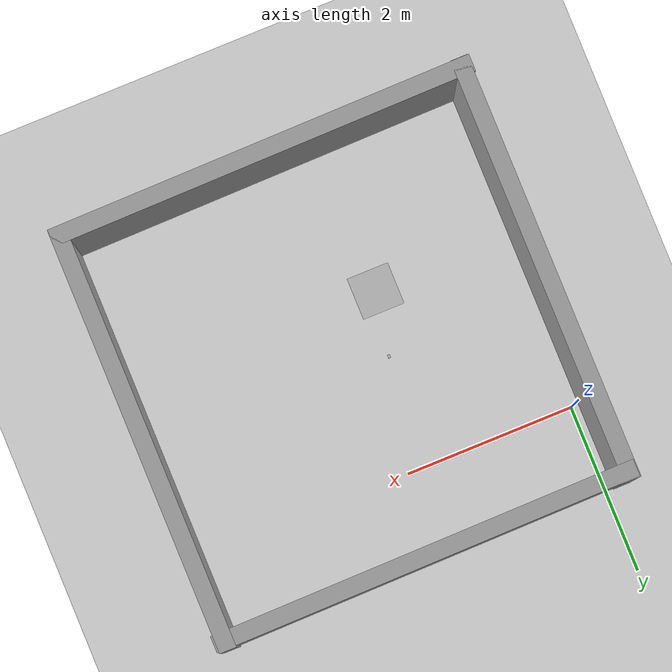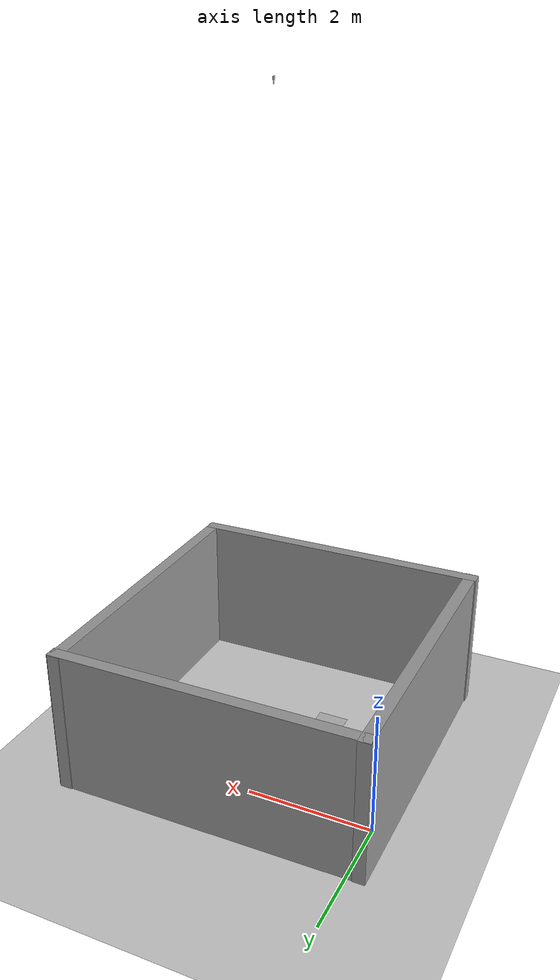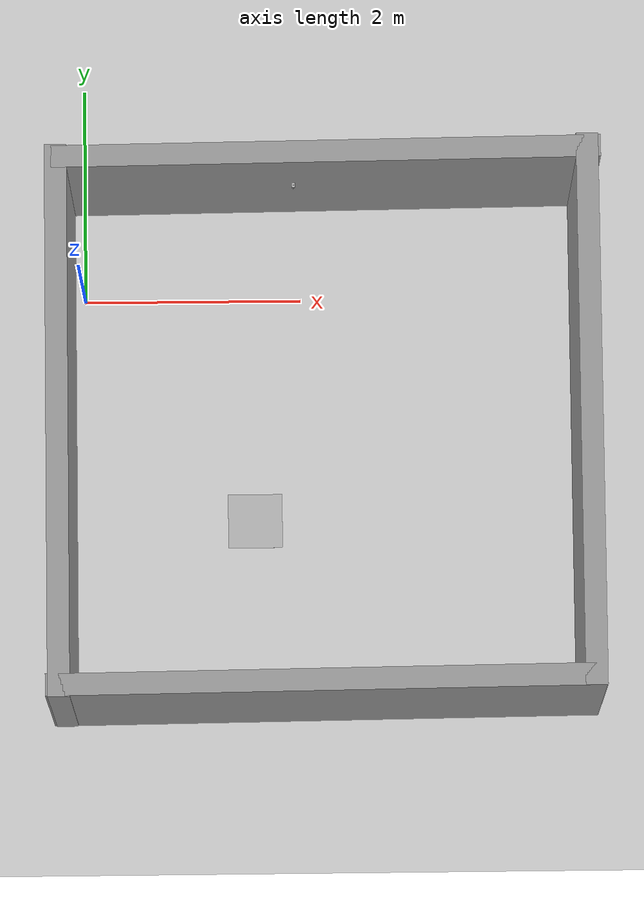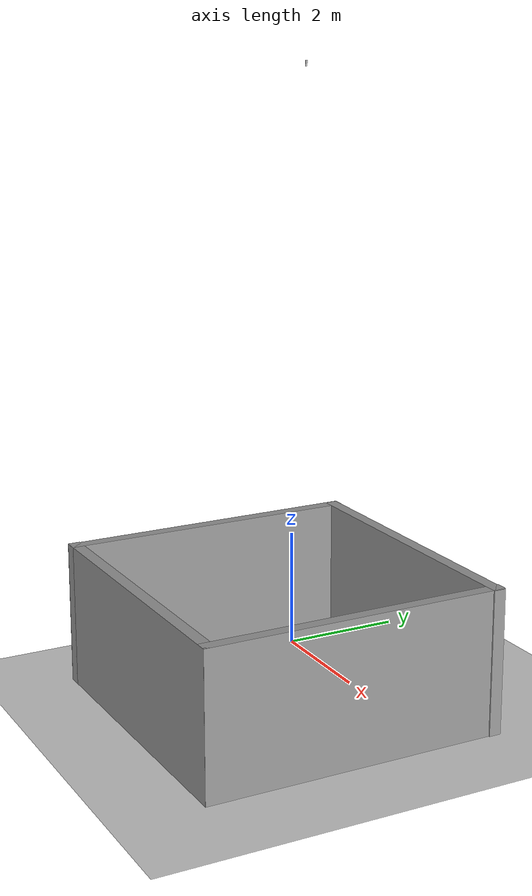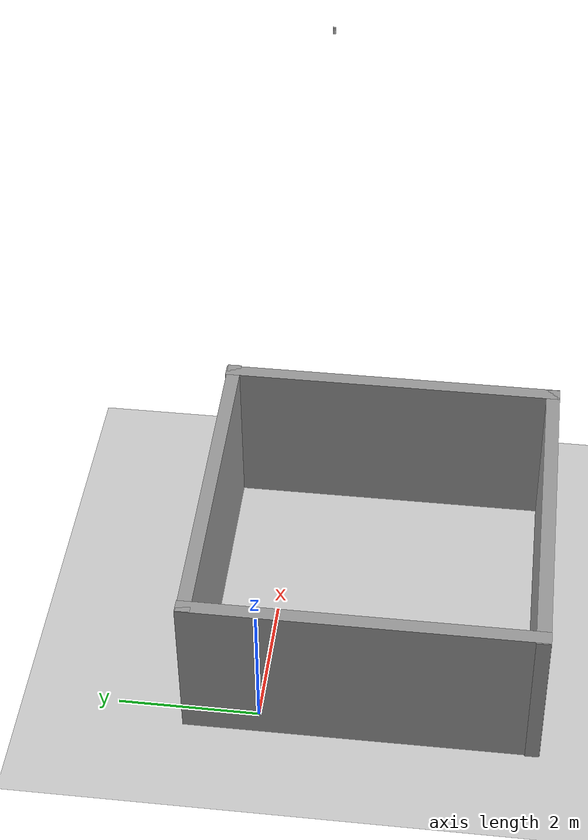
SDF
<?xml version="1.0"?>
<sdf version='1.6'>
  <world name='default'>

      <light type="spot" name="point_light">
      <pose>1.482 -1.417 22 0 0 0</pose>
      <diffuse>255 255 255 255</diffuse>
      <specular>23 23 23 255</specular>
      <attenuation>
        <range>200</range>
        <linear>0</linear>
        <constant>0.25</constant>
        <quadratic>0.</quadratic>
      </attenuation>
      <cast_shadows>false</cast_shadows>
    </light>

    <include>
      <uri>model://ground_plane</uri>
    </include>
    <include>
      <uri>model://sun</uri>
      <pose>0 0 5000 0 0 0</pose>
      <name>sun</name>
    </include>
    <physics type="ode">
      <real_time_update_rate>1000.0</real_time_update_rate>
      <max_step_size>0.001</max_step_size>
      <real_time_factor>1</real_time_factor>
      <ode>
        <solver>
          <type>quick</type>
          <iters>150</iters>
          <precon_iters>0</precon_iters>
          <sor>1.400000</sor>
          <use_dynamic_moi_rescaling>1</use_dynamic_moi_rescaling>
        </solver>
        <constraints>
          <cfm>0.00001</cfm>
          <erp>0.2</erp>
          <contact_max_correcting_vel>2000.000000</contact_max_correcting_vel>
          <contact_surface_layer>0.01000</contact_surface_layer>
        </constraints>
      </ode>
    </physics>
    <include>
      <uri>model://april_tags_camera</uri>
      <pose>1.968 -0.84 10.0 0 1.57079 0</pose>
      <name>april_tags_camera</name>
    </include>
    <include>
      <uri>model://big_room</uri>
      <pose>-2.093255 -5.88 -0.3 0 0 0</pose>
      <name>big_room</name>
    </include>
    <include>
      <uri>model://apriltag1</uri>
      <pose>1.559 -2.069 0.0298 3.1415 -1.562 1.571</pose>
      <name>AprilTag1</name>
    </include>
  </world>
</sdf>

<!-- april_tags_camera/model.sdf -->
<sdf version='1.6'>
  <model name='april_tags_camera'>
    <static>true</static>
    <pose>0 0 0 0 0 0</pose>
    <link name='april_camera_link'>
      <visual name='visual'>
        <geometry>
        <mesh>
          <uri>model://april_tags_camera/meshes/scaled_lens.stl</uri>
        </mesh>
        </geometry>
      </visual>
      <sensor name='my_camera' type='camera'>
        <pose>0.2 0 0 -1.577 0 0</pose>
        <camera>
          <horizontal_fov>1.0472</horizontal_fov> <!-- 60.0 degrees-->
          <image>
            <width>680</width>
            <height>480</height>
          </image>
          <clip>
            <near>0.1</near>
            <far>100</far>
          </clip>
        </camera>
        <always_on>1</always_on>
        <update_rate>30</update_rate>

          <plugin name="april_tag_camera_controller" filename="libgazebo_ros_camera.so">
            <alwaysOn>true</alwaysOn>
            <updateRate>60</updateRate>
            <cameraName>april_tag_camera</cameraName>
            <imageTopicName>april_camera_image_raw</imageTopicName>
            <cameraInfoTopicName>camera_info</cameraInfoTopicName>
            <frameName>april_camera_link</frameName>
            <hackBaseline>0.07</hackBaseline>
            <distortionK1>0.0</distortionK1>
            <distortionK2>0.0</distortionK2>
            <distortionK3>0.0</distortionK3>
            <distortionT1>0.0</distortionT1>
            <distortionT2>0.0</distortionT2>
          </plugin>
      </sensor>
    </link>
  </model>
</sdf>

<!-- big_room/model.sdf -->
<sdf version='1.6'>
  <model name='big_room'>
    <link name='link_clone_0'>
      <pose frame=''>1.90491 4.42316 1.4 0 0 -1.56949</pose>
      <inertial>
        <mass>1</mass>
        <pose frame=''>0 0 0 0 -0 0</pose>
        <inertia>
          <ixx>1</ixx>
          <ixy>0</ixy>
          <ixz>0</ixz>
          <iyy>1</iyy>
          <iyz>0</iyz>
          <izz>1</izz>
        </inertia>
      </inertial>
      <self_collide>0</self_collide>
      <kinematic>0</kinematic>
      <enable_wind>0</enable_wind>
      <gravity>1</gravity>
      <visual name='visual'>
        <cast_shadows>0</cast_shadows>
        <geometry>
          <box>
            <size>5 0.2 2.5</size>
          </box>
        </geometry>
        <material>
          <script>
            <uri>model://grey_wall/materials/scripts</uri>
            <uri>model://grey_wall/materials/textures</uri>
            <name>vrc/grey_wall</name>
          </script>
          <ambient>1 1 1 1</ambient>
          <diffuse>1 1 1 1</diffuse>
          <specular>0 0 0 1</specular>
          <emissive>0 0 0 1</emissive>
          <shader type='vertex'>
            <normal_map>__default__</normal_map>
          </shader>
        </material>
        <pose frame=''>0 0 0 0 -0 0</pose>
        <transparency>0</transparency>
      </visual>
      <collision name='collision'>
        <laser_retro>0</laser_retro>
        <max_contacts>10</max_contacts>
        <pose frame=''>0 0 0 0 -0 0</pose>
        <geometry>
          <box>
            <size>5 0.2 2.5</size>
          </box>
        </geometry>
        <surface>
          <friction>
            <ode>
              <mu>1</mu>
              <mu2>1</mu2>
              <fdir1>0 0 0</fdir1>
              <slip1>0</slip1>
              <slip2>0</slip2>
            </ode>
            <torsional>
              <coefficient>1</coefficient>
              <patch_radius>0</patch_radius>
              <surface_radius>0</surface_radius>
              <use_patch_radius>1</use_patch_radius>
              <ode>
                <slip>0</slip>
              </ode>
            </torsional>
          </friction>
          <bounce>
            <restitution_coefficient>0</restitution_coefficient>
            <threshold>1e+06</threshold>
          </bounce>
          <contact>
            <collide_without_contact>0</collide_without_contact>
            <collide_without_contact_bitmask>1</collide_without_contact_bitmask>
            <collide_bitmask>1</collide_bitmask>
            <ode>
              <soft_cfm>0</soft_cfm>
              <soft_erp>0.2</soft_erp>
              <kp>1e+13</kp>
              <kd>1</kd>
              <max_vel>0.01</max_vel>
              <min_depth>0</min_depth>
            </ode>
            <bullet>
              <split_impulse>1</split_impulse>
              <split_impulse_penetration_threshold>-0.01</split_impulse_penetration_threshold>
              <soft_cfm>0</soft_cfm>
              <soft_erp>0.2</soft_erp>
              <kp>1e+13</kp>
              <kd>1</kd>
            </bullet>
          </contact>
        </surface>
      </collision>
    </link>
    <link name='link_clone_0_clone'>
      <pose frame=''>6.69275 4.47706 1.4 0 0 -1.56949</pose>
      <inertial>
        <mass>1</mass>
        <pose frame=''>0 0 0 0 -0 0</pose>
        <inertia>
          <ixx>1</ixx>
          <ixy>0</ixy>
          <ixz>0</ixz>
          <iyy>1</iyy>
          <iyz>0</iyz>
          <izz>1</izz>
        </inertia>
      </inertial>
      <self_collide>0</self_collide>
      <kinematic>0</kinematic>
      <enable_wind>0</enable_wind>
      <gravity>1</gravity>
      <visual name='visual'>
        <cast_shadows>0</cast_shadows>
        <geometry>
          <box>
            <size>5 0.2 2.5</size>
          </box>
        </geometry>
        <material>
          <script>
            <uri>model://grey_wall/materials/scripts</uri>
            <uri>model://grey_wall/materials/textures</uri>
            <name>vrc/grey_wall</name>
          </script>
          <ambient>1 1 1 1</ambient>
          <diffuse>1 1 1 1</diffuse>
          <specular>0 0 0 1</specular>
          <emissive>0 0 0 1</emissive>
          <shader type='vertex'>
            <normal_map>__default__</normal_map>
          </shader>
        </material>
        <pose frame=''>0 0 0 0 -0 0</pose>
        <transparency>0</transparency>
      </visual>
      <collision name='collision'>
        <laser_retro>0</laser_retro>
        <max_contacts>10</max_contacts>
        <pose frame=''>0 0 0 0 -0 0</pose>
        <geometry>
          <box>
            <size>5 0.2 2.5</size>
          </box>
        </geometry>
        <surface>
          <friction>
            <ode>
              <mu>1</mu>
              <mu2>1</mu2>
              <fdir1>0 0 0</fdir1>
              <slip1>0</slip1>
              <slip2>0</slip2>
            </ode>
            <torsional>
              <coefficient>1</coefficient>
              <patch_radius>0</patch_radius>
              <surface_radius>0</surface_radius>
              <use_patch_radius>1</use_patch_radius>
              <ode>
                <slip>0</slip>
              </ode>
            </torsional>
          </friction>
          <bounce>
            <restitution_coefficient>0</restitution_coefficient>
            <threshold>1e+06</threshold>
          </bounce>
          <contact>
            <collide_without_contact>0</collide_without_contact>
            <collide_without_contact_bitmask>1</collide_without_contact_bitmask>
            <collide_bitmask>1</collide_bitmask>
            <ode>
              <soft_cfm>0</soft_cfm>
              <soft_erp>0.2</soft_erp>
              <kp>1e+13</kp>
              <kd>1</kd>
              <max_vel>0.01</max_vel>
              <min_depth>0</min_depth>
            </ode>
            <bullet>
              <split_impulse>1</split_impulse>
              <split_impulse_penetration_threshold>-0.01</split_impulse_penetration_threshold>
              <soft_cfm>0</soft_cfm>
              <soft_erp>0.2</soft_erp>
              <kp>1e+13</kp>
              <kd>1</kd>
            </bullet>
          </contact>
        </surface>
      </collision>
    </link>
    <link name='link_clone_0_clone_0'>
      <pose frame=''>4.31117 6.83742 1.4 0 0 -3.13166</pose>
      <inertial>
        <mass>1</mass>
        <pose frame=''>0 0 0 0 -0 0</pose>
        <inertia>
          <ixx>1</ixx>
          <ixy>0</ixy>
          <ixz>0</ixz>
          <iyy>1</iyy>
          <iyz>0</iyz>
          <izz>1</izz>
        </inertia>
      </inertial>
      <self_collide>0</self_collide>
      <kinematic>0</kinematic>
      <enable_wind>0</enable_wind>
      <gravity>1</gravity>
      <visual name='visual'>
        <cast_shadows>0</cast_shadows>
        <geometry>
          <box>
            <size>5 0.2 2.5</size>
          </box>
        </geometry>
        <material>
          <script>
            <uri>model://grey_wall/materials/scripts</uri>
            <uri>model://grey_wall/materials/textures</uri>
            <name>vrc/grey_wall</name>
          </script>
          <ambient>1 1 1 1</ambient>
          <diffuse>1 1 1 1</diffuse>
          <specular>0 0 0 1</specular>
          <emissive>0 0 0 1</emissive>
          <shader type='vertex'>
            <normal_map>__default__</normal_map>
          </shader>
        </material>
        <pose frame=''>0 0 0 0 -0 0</pose>
        <transparency>0</transparency>
      </visual>
      <collision name='collision'>
        <laser_retro>0</laser_retro>
        <max_contacts>10</max_contacts>
        <pose frame=''>0 0 0 0 -0 0</pose>
        <geometry>
          <box>
            <size>5 0.2 2.5</size>
          </box>
        </geometry>
        <surface>
          <friction>
            <ode>
              <mu>1</mu>
              <mu2>1</mu2>
              <fdir1>0 0 0</fdir1>
              <slip1>0</slip1>
              <slip2>0</slip2>
            </ode>
            <torsional>
              <coefficient>1</coefficient>
              <patch_radius>0</patch_radius>
              <surface_radius>0</surface_radius>
              <use_patch_radius>1</use_patch_radius>
              <ode>
                <slip>0</slip>
              </ode>
            </torsional>
          </friction>
          <bounce>
            <restitution_coefficient>0</restitution_coefficient>
            <threshold>1e+06</threshold>
          </bounce>
          <contact>
            <collide_without_contact>0</collide_without_contact>
            <collide_without_contact_bitmask>1</collide_without_contact_bitmask>
            <collide_bitmask>1</collide_bitmask>
            <ode>
              <soft_cfm>0</soft_cfm>
              <soft_erp>0.2</soft_erp>
              <kp>1e+13</kp>
              <kd>1</kd>
              <max_vel>0.01</max_vel>
              <min_depth>0</min_depth>
            </ode>
            <bullet>
              <split_impulse>1</split_impulse>
              <split_impulse_penetration_threshold>-0.01</split_impulse_penetration_threshold>
              <soft_cfm>0</soft_cfm>
              <soft_erp>0.2</soft_erp>
              <kp>1e+13</kp>
              <kd>1</kd>
            </bullet>
          </contact>
        </surface>
      </collision>
    </link>
    <link name='link_clone_0_clone_0_clone'>
      <pose frame=''>4.29026 2.05207 1.4 0 0 -3.13166</pose>
      <inertial>
        <mass>1</mass>
        <pose frame=''>0 0 0 0 -0 0</pose>
        <inertia>
          <ixx>1</ixx>
          <ixy>0</ixy>
          <ixz>0</ixz>
          <iyy>1</iyy>
          <iyz>0</iyz>
          <izz>1</izz>
        </inertia>
      </inertial>
      <self_collide>0</self_collide>
      <kinematic>0</kinematic>
      <enable_wind>0</enable_wind>
      <gravity>1</gravity>
      <visual name='visual'>
        <cast_shadows>0</cast_shadows>
        <geometry>
          <box>
            <size>5 0.2 2.5</size>
          </box>
        </geometry>
        <material>
          <script>
            <uri>model://grey_wall/materials/scripts</uri>
            <uri>model://grey_wall/materials/textures</uri>
            <name>vrc/grey_wall</name>
          </script>
          <ambient>1 1 1 1</ambient>
          <diffuse>1 1 1 1</diffuse>
          <specular>0 0 0 1</specular>
          <emissive>0 0 0 1</emissive>
          <shader type='vertex'>
            <normal_map>__default__</normal_map>
          </shader>
        </material>
        <pose frame=''>0 0 0 0 -0 0</pose>
        <transparency>0</transparency>
      </visual>
      <collision name='collision'>
        <laser_retro>0</laser_retro>
        <max_contacts>10</max_contacts>
        <pose frame=''>0 0 0 0 -0 0</pose>
        <geometry>
          <box>
            <size>5 0.2 2.5</size>
          </box>
        </geometry>
        <surface>
          <friction>
            <ode>
              <mu>1</mu>
              <mu2>1</mu2>
              <fdir1>0 0 0</fdir1>
              <slip1>0</slip1>
              <slip2>0</slip2>
            </ode>
            <torsional>
              <coefficient>1</coefficient>
              <patch_radius>0</patch_radius>
              <surface_radius>0</surface_radius>
              <use_patch_radius>1</use_patch_radius>
              <ode>
                <slip>0</slip>
              </ode>
            </torsional>
          </friction>
          <bounce>
            <restitution_coefficient>0</restitution_coefficient>
            <threshold>1e+06</threshold>
          </bounce>
          <contact>
            <collide_without_contact>0</collide_without_contact>
            <collide_without_contact_bitmask>1</collide_without_contact_bitmask>
            <collide_bitmask>1</collide_bitmask>
            <ode>
              <soft_cfm>0</soft_cfm>
              <soft_erp>0.2</soft_erp>
              <kp>1e+13</kp>
              <kd>1</kd>
              <max_vel>0.01</max_vel>
              <min_depth>0</min_depth>
            </ode>
            <bullet>
              <split_impulse>1</split_impulse>
              <split_impulse_penetration_threshold>-0.01</split_impulse_penetration_threshold>
              <soft_cfm>0</soft_cfm>
              <soft_erp>0.2</soft_erp>
              <kp>1e+13</kp>
              <kd>1</kd>
            </bullet>
          </contact>
        </surface>
      </collision>
    </link>
    <static>1</static>
    <allow_auto_disable>1</allow_auto_disable>
  </model>
</sdf>

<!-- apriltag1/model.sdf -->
<sdf version='1.6'>
  <model name='apriltag1'>
    <link name='link'>
      <pose frame=''>0 0 0 0 0 0</pose>
      <self_collide>0</self_collide>
      <kinematic>0</kinematic>
      <gravity>0</gravity>
      <visual name='visual'>
        <geometry>
          <box>
            <size>0.001 0.5 0.5</size>
          </box>
        </geometry>
        <material>
          <script>
              <uri>model://apriltag1/materials/scripts/textures.material</uri>
              <uri>model://apriltag1/materials/textures/apriltag1.png</uri>
            <name>TexturedShape/Apriltag1</name>
          </script>
          <ambient>0.3 0.3 0.3 1</ambient>
          <diffuse>0.7 0.7 0.7 1</diffuse>
          <specular>0.01 0.01 0.01 1</specular>
          <emissive>0 0 0 1</emissive>
          <shader type='vertex'>
            <normal_map>__default__</normal_map>
          </shader>
        </material>
        <pose frame=''>0 0 0 0 -0 0</pose>
        <cast_shadows>1</cast_shadows>
        <transparency>0</transparency>
      </visual>
    </link>
    <static>1</static>
    <allow_auto_disable>1</allow_auto_disable>
  </model>
</sdf>
